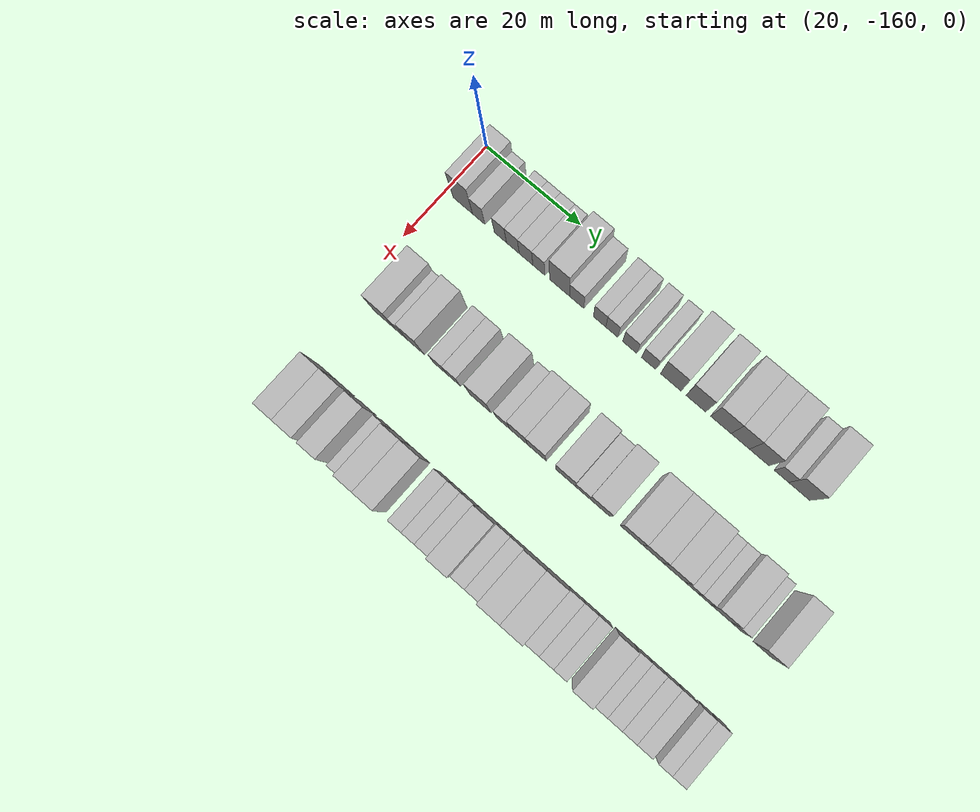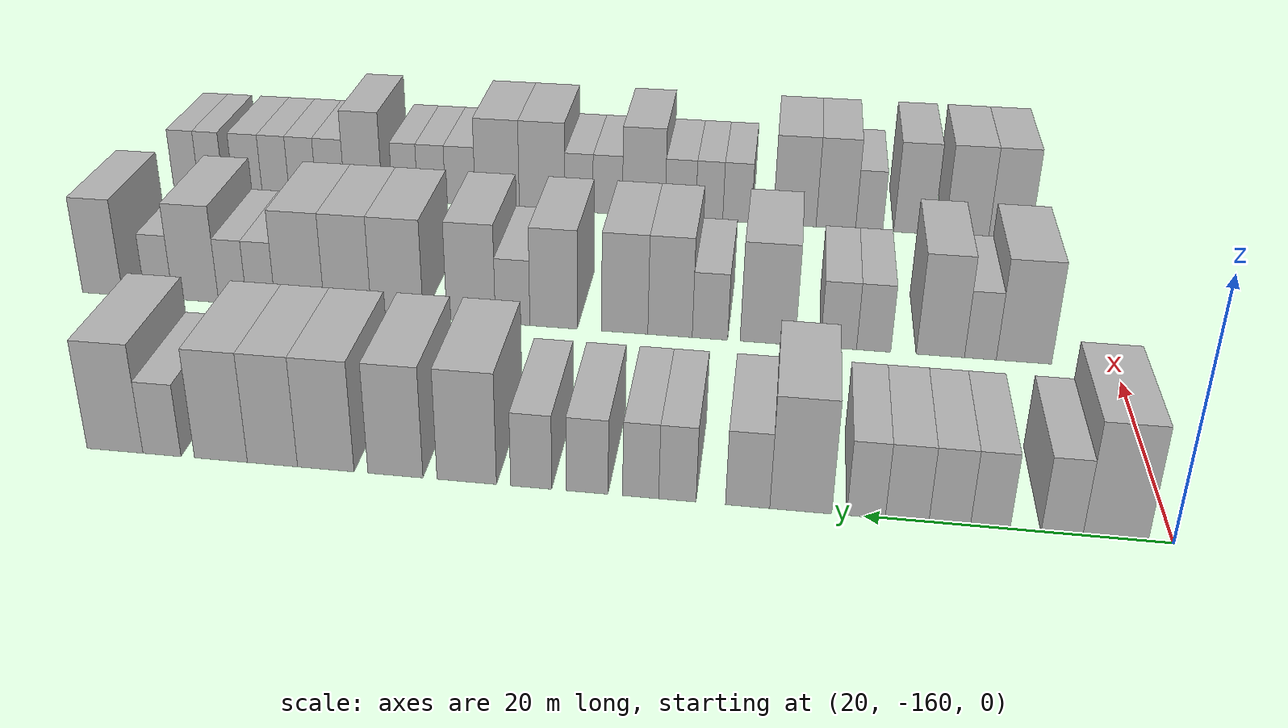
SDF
<sdf version="1.6">
 <world name="default">
  <model name="building_22">
   <static>1</static>
   <pose>25.0000 -156.2801 0 0.000000 0.000000 0.000000</pose>
   <link name="link">
    <pose>0 0 4.50 0 0 0</pose>
    <collision name="collision"><geometry><box><size>10.0000 4.1516 9.0000</size></box></geometry></collision>
    <visual name="visual">
     <cast_shadows>0</cast_shadows>
     <geometry><box><size>10.0000 4.1516 9.0000</size></box></geometry>
     <material>
      <script>
       <uri>model://HANNAS_wall/materials/scripts</uri>
       <uri>model://HANNAS_wall/materials/textures</uri>
       <name>vrc/HANNAS_wall</name>
      </script>
     </material>
    </visual>
   </link>
  </model>
  <model name="building_23">
   <static>1</static>
   <pose>25.0000 -152.8687 0 0.000000 0.000000 0.000000</pose>
   <link name="link">
    <pose>0 0 3.00 0 0 0</pose>
    <collision name="collision"><geometry><box><size>10.0000 2.6712 6.0000</size></box></geometry></collision>
    <visual name="visual">
     <cast_shadows>0</cast_shadows>
     <geometry><box><size>10.0000 2.6712 6.0000</size></box></geometry>
     <material>
      <script>
       <uri>model://HANNAS_wall/materials/scripts</uri>
       <uri>model://HANNAS_wall/materials/textures</uri>
       <name>vrc/HANNAS_wall</name>
      </script>
     </material>
    </visual>
   </link>
  </model>
  <model name="building_24">
   <static>1</static>
   <pose>25.0000 -148.2461 0 0.000000 0.000000 0.000000</pose>
   <link name="link">
    <pose>0 0 3.00 0 0 0</pose>
    <collision name="collision"><geometry><box><size>10.0000 2.5739 6.0000</size></box></geometry></collision>
    <visual name="visual">
     <cast_shadows>0</cast_shadows>
     <geometry><box><size>10.0000 2.5739 6.0000</size></box></geometry>
     <material>
      <script>
       <uri>model://HANNAS_wall/materials/scripts</uri>
       <uri>model://HANNAS_wall/materials/textures</uri>
       <name>vrc/HANNAS_wall</name>
      </script>
     </material>
    </visual>
   </link>
  </model>
  <model name="building_25">
   <static>1</static>
   <pose>25.0000 -145.6053 0 0.000000 0.000000 0.000000</pose>
   <link name="link">
    <pose>0 0 3.00 0 0 0</pose>
    <collision name="collision"><geometry><box><size>10.0000 2.7077 6.0000</size></box></geometry></collision>
    <visual name="visual">
     <cast_shadows>0</cast_shadows>
     <geometry><box><size>10.0000 2.7077 6.0000</size></box></geometry>
     <material>
      <script>
       <uri>model://HANNAS_wall/materials/scripts</uri>
       <uri>model://HANNAS_wall/materials/textures</uri>
       <name>vrc/HANNAS_wall</name>
      </script>
     </material>
    </visual>
   </link>
  </model>
  <model name="building_26">
   <static>1</static>
   <pose>25.0000 -142.8159 0 0.000000 0.000000 0.000000</pose>
   <link name="link">
    <pose>0 0 3.00 0 0 0</pose>
    <collision name="collision"><geometry><box><size>10.0000 2.8712 6.0000</size></box></geometry></collision>
    <visual name="visual">
     <cast_shadows>0</cast_shadows>
     <geometry><box><size>10.0000 2.8712 6.0000</size></box></geometry>
     <material>
      <script>
       <uri>model://HANNAS_wall/materials/scripts</uri>
       <uri>model://HANNAS_wall/materials/textures</uri>
       <name>vrc/HANNAS_wall</name>
      </script>
     </material>
    </visual>
   </link>
  </model>
  <model name="building_27">
   <static>1</static>
   <pose>25.0000 -140.1075 0 0.000000 0.000000 0.000000</pose>
   <link name="link">
    <pose>0 0 3.00 0 0 0</pose>
    <collision name="collision"><geometry><box><size>10.0000 2.5455 6.0000</size></box></geometry></collision>
    <visual name="visual">
     <cast_shadows>0</cast_shadows>
     <geometry><box><size>10.0000 2.5455 6.0000</size></box></geometry>
     <material>
      <script>
       <uri>model://HANNAS_wall/materials/scripts</uri>
       <uri>model://HANNAS_wall/materials/textures</uri>
       <name>vrc/HANNAS_wall</name>
      </script>
     </material>
    </visual>
   </link>
  </model>
  <model name="building_28">
   <static>1</static>
   <pose>25.0000 -135.7602 0 0.000000 0.000000 0.000000</pose>
   <link name="link">
    <pose>0 0 4.50 0 0 0</pose>
    <collision name="collision"><geometry><box><size>10.0000 4.1491 9.0000</size></box></geometry></collision>
    <visual name="visual">
     <cast_shadows>0</cast_shadows>
     <geometry><box><size>10.0000 4.1491 9.0000</size></box></geometry>
     <material>
      <script>
       <uri>model://HANNAS_wall/materials/scripts</uri>
       <uri>model://HANNAS_wall/materials/textures</uri>
       <name>vrc/HANNAS_wall</name>
      </script>
     </material>
    </visual>
   </link>
  </model>
  <model name="building_29">
   <static>1</static>
   <pose>25.0000 -132.1900 0 0.000000 0.000000 0.000000</pose>
   <link name="link">
    <pose>0 0 3.00 0 0 0</pose>
    <collision name="collision"><geometry><box><size>10.0000 2.9913 6.0000</size></box></geometry></collision>
    <visual name="visual">
     <cast_shadows>0</cast_shadows>
     <geometry><box><size>10.0000 2.9913 6.0000</size></box></geometry>
     <material>
      <script>
       <uri>model://HANNAS_wall/materials/scripts</uri>
       <uri>model://HANNAS_wall/materials/textures</uri>
       <name>vrc/HANNAS_wall</name>
      </script>
     </material>
    </visual>
   </link>
  </model>
  <model name="building_30">
   <static>1</static>
   <pose>25.0000 -127.4156 0 0.000000 0.000000 0.000000</pose>
   <link name="link">
    <pose>0 0 3.00 0 0 0</pose>
    <collision name="collision"><geometry><box><size>10.0000 2.5576 6.0000</size></box></geometry></collision>
    <visual name="visual">
     <cast_shadows>0</cast_shadows>
     <geometry><box><size>10.0000 2.5576 6.0000</size></box></geometry>
     <material>
      <script>
       <uri>model://HANNAS_wall/materials/scripts</uri>
       <uri>model://HANNAS_wall/materials/textures</uri>
       <name>vrc/HANNAS_wall</name>
      </script>
     </material>
    </visual>
   </link>
  </model>
  <model name="building_31">
   <static>1</static>
   <pose>25.0000 -124.8931 0 0.000000 0.000000 0.000000</pose>
   <link name="link">
    <pose>0 0 3.00 0 0 0</pose>
    <collision name="collision"><geometry><box><size>10.0000 2.4873 6.0000</size></box></geometry></collision>
    <visual name="visual">
     <cast_shadows>0</cast_shadows>
     <geometry><box><size>10.0000 2.4873 6.0000</size></box></geometry>
     <material>
      <script>
       <uri>model://HANNAS_wall/materials/scripts</uri>
       <uri>model://HANNAS_wall/materials/textures</uri>
       <name>vrc/HANNAS_wall</name>
      </script>
     </material>
    </visual>
   </link>
  </model>
  <model name="building_32">
   <static>1</static>
   <pose>25.0000 -121.1927 0 0.000000 0.000000 0.000000</pose>
   <link name="link">
    <pose>0 0 3.00 0 0 0</pose>
    <collision name="collision"><geometry><box><size>10.0000 2.9135 6.0000</size></box></geometry></collision>
    <visual name="visual">
     <cast_shadows>0</cast_shadows>
     <geometry><box><size>10.0000 2.9135 6.0000</size></box></geometry>
     <material>
      <script>
       <uri>model://HANNAS_wall/materials/scripts</uri>
       <uri>model://HANNAS_wall/materials/textures</uri>
       <name>vrc/HANNAS_wall</name>
      </script>
     </material>
    </visual>
   </link>
  </model>
  <model name="building_33">
   <static>1</static>
   <pose>25.0000 -117.2960 0 0.000000 0.000000 0.000000</pose>
   <link name="link">
    <pose>0 0 3.00 0 0 0</pose>
    <collision name="collision"><geometry><box><size>10.0000 2.8801 6.0000</size></box></geometry></collision>
    <visual name="visual">
     <cast_shadows>0</cast_shadows>
     <geometry><box><size>10.0000 2.8801 6.0000</size></box></geometry>
     <material>
      <script>
       <uri>model://HANNAS_wall/materials/scripts</uri>
       <uri>model://HANNAS_wall/materials/textures</uri>
       <name>vrc/HANNAS_wall</name>
      </script>
     </material>
    </visual>
   </link>
  </model>
  <model name="building_34">
   <static>1</static>
   <pose>25.0000 -112.7442 0 0.000000 0.000000 0.000000</pose>
   <link name="link">
    <pose>0 0 4.50 0 0 0</pose>
    <collision name="collision"><geometry><box><size>10.0000 4.2234 9.0000</size></box></geometry></collision>
    <visual name="visual">
     <cast_shadows>0</cast_shadows>
     <geometry><box><size>10.0000 4.2234 9.0000</size></box></geometry>
     <material>
      <script>
       <uri>model://HANNAS_wall/materials/scripts</uri>
       <uri>model://HANNAS_wall/materials/textures</uri>
       <name>vrc/HANNAS_wall</name>
      </script>
     </material>
    </visual>
   </link>
  </model>
  <model name="building_35">
   <static>1</static>
   <pose>25.0000 -107.6550 0 0.000000 0.000000 0.000000</pose>
   <link name="link">
    <pose>0 0 4.50 0 0 0</pose>
    <collision name="collision"><geometry><box><size>10.0000 3.9551 9.0000</size></box></geometry></collision>
    <visual name="visual">
     <cast_shadows>0</cast_shadows>
     <geometry><box><size>10.0000 3.9551 9.0000</size></box></geometry>
     <material>
      <script>
       <uri>model://HANNAS_wall/materials/scripts</uri>
       <uri>model://HANNAS_wall/materials/textures</uri>
       <name>vrc/HANNAS_wall</name>
      </script>
     </material>
    </visual>
   </link>
  </model>
  <model name="building_36">
   <static>1</static>
   <pose>25.0000 -102.6188 0 0.000000 0.000000 0.000000</pose>
   <link name="link">
    <pose>0 0 4.50 0 0 0</pose>
    <collision name="collision"><geometry><box><size>10.0000 4.1171 9.0000</size></box></geometry></collision>
    <visual name="visual">
     <cast_shadows>0</cast_shadows>
     <geometry><box><size>10.0000 4.1171 9.0000</size></box></geometry>
     <material>
      <script>
       <uri>model://HANNAS_wall/materials/scripts</uri>
       <uri>model://HANNAS_wall/materials/textures</uri>
       <name>vrc/HANNAS_wall</name>
      </script>
     </material>
    </visual>
   </link>
  </model>
  <model name="building_37">
   <static>1</static>
   <pose>25.0000 -98.7175 0 0.000000 0.000000 0.000000</pose>
   <link name="link">
    <pose>0 0 4.50 0 0 0</pose>
    <collision name="collision"><geometry><box><size>10.0000 3.6855 9.0000</size></box></geometry></collision>
    <visual name="visual">
     <cast_shadows>0</cast_shadows>
     <geometry><box><size>10.0000 3.6855 9.0000</size></box></geometry>
     <material>
      <script>
       <uri>model://HANNAS_wall/materials/scripts</uri>
       <uri>model://HANNAS_wall/materials/textures</uri>
       <name>vrc/HANNAS_wall</name>
      </script>
     </material>
    </visual>
   </link>
  </model>
  <model name="building_38">
   <static>1</static>
   <pose>25.0000 -94.9132 0 0.000000 0.000000 0.000000</pose>
   <link name="link">
    <pose>0 0 4.50 0 0 0</pose>
    <collision name="collision"><geometry><box><size>10.0000 3.9232 9.0000</size></box></geometry></collision>
    <visual name="visual">
     <cast_shadows>0</cast_shadows>
     <geometry><box><size>10.0000 3.9232 9.0000</size></box></geometry>
     <material>
      <script>
       <uri>model://HANNAS_wall/materials/scripts</uri>
       <uri>model://HANNAS_wall/materials/textures</uri>
       <name>vrc/HANNAS_wall</name>
      </script>
     </material>
    </visual>
   </link>
  </model>
  <model name="building_39">
   <static>1</static>
   <pose>25.0000 -90.5233 0 0.000000 0.000000 0.000000</pose>
   <link name="link">
    <pose>0 0 3.00 0 0 0</pose>
    <collision name="collision"><geometry><box><size>10.0000 2.8564 6.0000</size></box></geometry></collision>
    <visual name="visual">
     <cast_shadows>0</cast_shadows>
     <geometry><box><size>10.0000 2.8564 6.0000</size></box></geometry>
     <material>
      <script>
       <uri>model://HANNAS_wall/materials/scripts</uri>
       <uri>model://HANNAS_wall/materials/textures</uri>
       <name>vrc/HANNAS_wall</name>
      </script>
     </material>
    </visual>
   </link>
  </model>
  <model name="building_40">
   <static>1</static>
   <pose>25.0000 -86.9882 0 0.000000 0.000000 0.000000</pose>
   <link name="link">
    <pose>0 0 4.50 0 0 0</pose>
    <collision name="collision"><geometry><box><size>10.0000 4.2139 9.0000</size></box></geometry></collision>
    <visual name="visual">
     <cast_shadows>0</cast_shadows>
     <geometry><box><size>10.0000 4.2139 9.0000</size></box></geometry>
     <material>
      <script>
       <uri>model://HANNAS_wall/materials/scripts</uri>
       <uri>model://HANNAS_wall/materials/textures</uri>
       <name>vrc/HANNAS_wall</name>
      </script>
     </material>
    </visual>
   </link>
  </model>
  <model name="building_142">
   <static>1</static>
   <pose>47.0000 -152.9065 0 0.000000 0.000000 0.000000</pose>
   <link name="link">
    <pose>0 0 4.50 0 0 0</pose>
    <collision name="collision"><geometry><box><size>10.0000 4.2581 9.0000</size></box></geometry></collision>
    <visual name="visual">
     <cast_shadows>0</cast_shadows>
     <geometry><box><size>10.0000 4.2581 9.0000</size></box></geometry>
     <material>
      <script>
       <uri>model://HANNAS_wall/materials/scripts</uri>
       <uri>model://HANNAS_wall/materials/textures</uri>
       <name>vrc/HANNAS_wall</name>
      </script>
     </material>
    </visual>
   </link>
  </model>
  <model name="building_143">
   <static>1</static>
   <pose>47.0000 -149.5457 0 0.000000 0.000000 0.000000</pose>
   <link name="link">
    <pose>0 0 3.00 0 0 0</pose>
    <collision name="collision"><geometry><box><size>10.0000 2.4635 6.0000</size></box></geometry></collision>
    <visual name="visual">
     <cast_shadows>0</cast_shadows>
     <geometry><box><size>10.0000 2.4635 6.0000</size></box></geometry>
     <material>
      <script>
       <uri>model://HANNAS_wall/materials/scripts</uri>
       <uri>model://HANNAS_wall/materials/textures</uri>
       <name>vrc/HANNAS_wall</name>
      </script>
     </material>
    </visual>
   </link>
  </model>
  <model name="building_144">
   <static>1</static>
   <pose>47.0000 -146.4337 0 0.000000 0.000000 0.000000</pose>
   <link name="link">
    <pose>0 0 4.50 0 0 0</pose>
    <collision name="collision"><geometry><box><size>10.0000 3.7605 9.0000</size></box></geometry></collision>
    <visual name="visual">
     <cast_shadows>0</cast_shadows>
     <geometry><box><size>10.0000 3.7605 9.0000</size></box></geometry>
     <material>
      <script>
       <uri>model://HANNAS_wall/materials/scripts</uri>
       <uri>model://HANNAS_wall/materials/textures</uri>
       <name>vrc/HANNAS_wall</name>
      </script>
     </material>
    </visual>
   </link>
  </model>
  <model name="building_145">
   <static>1</static>
   <pose>47.0000 -141.2028 0 0.000000 0.000000 0.000000</pose>
   <link name="link">
    <pose>0 0 3.00 0 0 0</pose>
    <collision name="collision"><geometry><box><size>10.0000 2.7014 6.0000</size></box></geometry></collision>
    <visual name="visual">
     <cast_shadows>0</cast_shadows>
     <geometry><box><size>10.0000 2.7014 6.0000</size></box></geometry>
     <material>
      <script>
       <uri>model://HANNAS_wall/materials/scripts</uri>
       <uri>model://HANNAS_wall/materials/textures</uri>
       <name>vrc/HANNAS_wall</name>
      </script>
     </material>
    </visual>
   </link>
  </model>
  <model name="building_146">
   <static>1</static>
   <pose>47.0000 -138.4193 0 0.000000 0.000000 0.000000</pose>
   <link name="link">
    <pose>0 0 3.00 0 0 0</pose>
    <collision name="collision"><geometry><box><size>10.0000 2.8654 6.0000</size></box></geometry></collision>
    <visual name="visual">
     <cast_shadows>0</cast_shadows>
     <geometry><box><size>10.0000 2.8654 6.0000</size></box></geometry>
     <material>
      <script>
       <uri>model://HANNAS_wall/materials/scripts</uri>
       <uri>model://HANNAS_wall/materials/textures</uri>
       <name>vrc/HANNAS_wall</name>
      </script>
     </material>
    </visual>
   </link>
  </model>
  <model name="building_147">
   <static>1</static>
   <pose>47.0000 -132.7723 0 0.000000 0.000000 0.000000</pose>
   <link name="link">
    <pose>0 0 4.50 0 0 0</pose>
    <collision name="collision"><geometry><box><size>10.0000 4.4286 9.0000</size></box></geometry></collision>
    <visual name="visual">
     <cast_shadows>0</cast_shadows>
     <geometry><box><size>10.0000 4.4286 9.0000</size></box></geometry>
     <material>
      <script>
       <uri>model://HANNAS_wall/materials/scripts</uri>
       <uri>model://HANNAS_wall/materials/textures</uri>
       <name>vrc/HANNAS_wall</name>
      </script>
     </material>
    </visual>
   </link>
  </model>
  <model name="building_148">
   <static>1</static>
   <pose>47.0000 -128.1174 0 0.000000 0.000000 0.000000</pose>
   <link name="link">
    <pose>0 0 3.00 0 0 0</pose>
    <collision name="collision"><geometry><box><size>10.0000 2.8811 6.0000</size></box></geometry></collision>
    <visual name="visual">
     <cast_shadows>0</cast_shadows>
     <geometry><box><size>10.0000 2.8811 6.0000</size></box></geometry>
     <material>
      <script>
       <uri>model://HANNAS_wall/materials/scripts</uri>
       <uri>model://HANNAS_wall/materials/textures</uri>
       <name>vrc/HANNAS_wall</name>
      </script>
     </material>
    </visual>
   </link>
  </model>
  <model name="building_149">
   <static>1</static>
   <pose>47.0000 -124.8654 0 0.000000 0.000000 0.000000</pose>
   <link name="link">
    <pose>0 0 4.50 0 0 0</pose>
    <collision name="collision"><geometry><box><size>10.0000 3.6229 9.0000</size></box></geometry></collision>
    <visual name="visual">
     <cast_shadows>0</cast_shadows>
     <geometry><box><size>10.0000 3.6229 9.0000</size></box></geometry>
     <material>
      <script>
       <uri>model://HANNAS_wall/materials/scripts</uri>
       <uri>model://HANNAS_wall/materials/textures</uri>
       <name>vrc/HANNAS_wall</name>
      </script>
     </material>
    </visual>
   </link>
  </model>
  <model name="building_150">
   <static>1</static>
   <pose>47.0000 -121.1486 0 0.000000 0.000000 0.000000</pose>
   <link name="link">
    <pose>0 0 4.50 0 0 0</pose>
    <collision name="collision"><geometry><box><size>10.0000 3.8107 9.0000</size></box></geometry></collision>
    <visual name="visual">
     <cast_shadows>0</cast_shadows>
     <geometry><box><size>10.0000 3.8107 9.0000</size></box></geometry>
     <material>
      <script>
       <uri>model://HANNAS_wall/materials/scripts</uri>
       <uri>model://HANNAS_wall/materials/textures</uri>
       <name>vrc/HANNAS_wall</name>
      </script>
     </material>
    </visual>
   </link>
  </model>
  <model name="building_151">
   <static>1</static>
   <pose>47.0000 -115.2673 0 0.000000 0.000000 0.000000</pose>
   <link name="link">
    <pose>0 0 4.50 0 0 0</pose>
    <collision name="collision"><geometry><box><size>10.0000 3.9520 9.0000</size></box></geometry></collision>
    <visual name="visual">
     <cast_shadows>0</cast_shadows>
     <geometry><box><size>10.0000 3.9520 9.0000</size></box></geometry>
     <material>
      <script>
       <uri>model://HANNAS_wall/materials/scripts</uri>
       <uri>model://HANNAS_wall/materials/textures</uri>
       <name>vrc/HANNAS_wall</name>
      </script>
     </material>
    </visual>
   </link>
  </model>
  <model name="building_152">
   <static>1</static>
   <pose>47.0000 -111.8466 0 0.000000 0.000000 0.000000</pose>
   <link name="link">
    <pose>0 0 3.00 0 0 0</pose>
    <collision name="collision"><geometry><box><size>10.0000 2.8892 6.0000</size></box></geometry></collision>
    <visual name="visual">
     <cast_shadows>0</cast_shadows>
     <geometry><box><size>10.0000 2.8892 6.0000</size></box></geometry>
     <material>
      <script>
       <uri>model://HANNAS_wall/materials/scripts</uri>
       <uri>model://HANNAS_wall/materials/textures</uri>
       <name>vrc/HANNAS_wall</name>
      </script>
     </material>
    </visual>
   </link>
  </model>
  <model name="building_153">
   <static>1</static>
   <pose>47.0000 -108.3455 0 0.000000 0.000000 0.000000</pose>
   <link name="link">
    <pose>0 0 4.50 0 0 0</pose>
    <collision name="collision"><geometry><box><size>10.0000 4.1132 9.0000</size></box></geometry></collision>
    <visual name="visual">
     <cast_shadows>0</cast_shadows>
     <geometry><box><size>10.0000 4.1132 9.0000</size></box></geometry>
     <material>
      <script>
       <uri>model://HANNAS_wall/materials/scripts</uri>
       <uri>model://HANNAS_wall/materials/textures</uri>
       <name>vrc/HANNAS_wall</name>
      </script>
     </material>
    </visual>
   </link>
  </model>
  <model name="building_154">
   <static>1</static>
   <pose>47.0000 -102.0620 0 0.000000 0.000000 0.000000</pose>
   <link name="link">
    <pose>0 0 4.50 0 0 0</pose>
    <collision name="collision"><geometry><box><size>10.0000 4.4537 9.0000</size></box></geometry></collision>
    <visual name="visual">
     <cast_shadows>0</cast_shadows>
     <geometry><box><size>10.0000 4.4537 9.0000</size></box></geometry>
     <material>
      <script>
       <uri>model://HANNAS_wall/materials/scripts</uri>
       <uri>model://HANNAS_wall/materials/textures</uri>
       <name>vrc/HANNAS_wall</name>
      </script>
     </material>
    </visual>
   </link>
  </model>
  <model name="building_155">
   <static>1</static>
   <pose>47.0000 -97.8123 0 0.000000 0.000000 0.000000</pose>
   <link name="link">
    <pose>0 0 4.50 0 0 0</pose>
    <collision name="collision"><geometry><box><size>10.0000 4.0456 9.0000</size></box></geometry></collision>
    <visual name="visual">
     <cast_shadows>0</cast_shadows>
     <geometry><box><size>10.0000 4.0456 9.0000</size></box></geometry>
     <material>
      <script>
       <uri>model://HANNAS_wall/materials/scripts</uri>
       <uri>model://HANNAS_wall/materials/textures</uri>
       <name>vrc/HANNAS_wall</name>
      </script>
     </material>
    </visual>
   </link>
  </model>
  <model name="building_156">
   <static>1</static>
   <pose>47.0000 -93.6516 0 0.000000 0.000000 0.000000</pose>
   <link name="link">
    <pose>0 0 4.50 0 0 0</pose>
    <collision name="collision"><geometry><box><size>10.0000 4.2757 9.0000</size></box></geometry></collision>
    <visual name="visual">
     <cast_shadows>0</cast_shadows>
     <geometry><box><size>10.0000 4.2757 9.0000</size></box></geometry>
     <material>
      <script>
       <uri>model://HANNAS_wall/materials/scripts</uri>
       <uri>model://HANNAS_wall/materials/textures</uri>
       <name>vrc/HANNAS_wall</name>
      </script>
     </material>
    </visual>
   </link>
  </model>
  <model name="building_157">
   <static>1</static>
   <pose>47.0000 -90.2600 0 0.000000 0.000000 0.000000</pose>
   <link name="link">
    <pose>0 0 3.00 0 0 0</pose>
    <collision name="collision"><geometry><box><size>10.0000 2.5075 6.0000</size></box></geometry></collision>
    <visual name="visual">
     <cast_shadows>0</cast_shadows>
     <geometry><box><size>10.0000 2.5075 6.0000</size></box></geometry>
     <material>
      <script>
       <uri>model://HANNAS_wall/materials/scripts</uri>
       <uri>model://HANNAS_wall/materials/textures</uri>
       <name>vrc/HANNAS_wall</name>
      </script>
     </material>
    </visual>
   </link>
  </model>
  <model name="building_158">
   <static>1</static>
   <pose>47.0000 -87.7638 0 0.000000 0.000000 0.000000</pose>
   <link name="link">
    <pose>0 0 3.00 0 0 0</pose>
    <collision name="collision"><geometry><box><size>10.0000 2.4848 6.0000</size></box></geometry></collision>
    <visual name="visual">
     <cast_shadows>0</cast_shadows>
     <geometry><box><size>10.0000 2.4848 6.0000</size></box></geometry>
     <material>
      <script>
       <uri>model://HANNAS_wall/materials/scripts</uri>
       <uri>model://HANNAS_wall/materials/textures</uri>
       <name>vrc/HANNAS_wall</name>
      </script>
     </material>
    </visual>
   </link>
  </model>
  <model name="building_159">
   <static>1</static>
   <pose>47.0000 -84.4908 0 0.000000 0.000000 0.000000</pose>
   <link name="link">
    <pose>0 0 4.50 0 0 0</pose>
    <collision name="collision"><geometry><box><size>10.0000 4.0612 9.0000</size></box></geometry></collision>
    <visual name="visual">
     <cast_shadows>0</cast_shadows>
     <geometry><box><size>10.0000 4.0612 9.0000</size></box></geometry>
     <material>
      <script>
       <uri>model://HANNAS_wall/materials/scripts</uri>
       <uri>model://HANNAS_wall/materials/textures</uri>
       <name>vrc/HANNAS_wall</name>
      </script>
     </material>
    </visual>
   </link>
  </model>
  <model name="building_160">
   <static>1</static>
   <pose>47.0000 -81.2140 0 0.000000 0.000000 0.000000</pose>
   <link name="link">
    <pose>0 0 3.00 0 0 0</pose>
    <collision name="collision"><geometry><box><size>10.0000 2.4925 6.0000</size></box></geometry></collision>
    <visual name="visual">
     <cast_shadows>0</cast_shadows>
     <geometry><box><size>10.0000 2.4925 6.0000</size></box></geometry>
     <material>
      <script>
       <uri>model://HANNAS_wall/materials/scripts</uri>
       <uri>model://HANNAS_wall/materials/textures</uri>
       <name>vrc/HANNAS_wall</name>
      </script>
     </material>
    </visual>
   </link>
  </model>
  <model name="building_161">
   <static>1</static>
   <pose>47.0000 -76.1546 0 0.000000 0.000000 0.000000</pose>
   <link name="link">
    <pose>0 0 4.50 0 0 0</pose>
    <collision name="collision"><geometry><box><size>10.0000 3.6261 9.0000</size></box></geometry></collision>
    <visual name="visual">
     <cast_shadows>0</cast_shadows>
     <geometry><box><size>10.0000 3.6261 9.0000</size></box></geometry>
     <material>
      <script>
       <uri>model://HANNAS_wall/materials/scripts</uri>
       <uri>model://HANNAS_wall/materials/textures</uri>
       <name>vrc/HANNAS_wall</name>
      </script>
     </material>
    </visual>
   </link>
  </model>
  <model name="building_270">
   <static>1</static>
   <pose>69.0000 -154.0956 0 0.000000 0.000000 0.000000</pose>
   <link name="link">
    <pose>0 0 4.50 0 0 0</pose>
    <collision name="collision"><geometry><box><size>10.0000 3.7353 9.0000</size></box></geometry></collision>
    <visual name="visual">
     <cast_shadows>0</cast_shadows>
     <geometry><box><size>10.0000 3.7353 9.0000</size></box></geometry>
     <material>
      <script>
       <uri>model://HANNAS_wall/materials/scripts</uri>
       <uri>model://HANNAS_wall/materials/textures</uri>
       <name>vrc/HANNAS_wall</name>
      </script>
     </material>
    </visual>
   </link>
  </model>
  <model name="building_271">
   <static>1</static>
   <pose>69.0000 -150.2563 0 0.000000 0.000000 0.000000</pose>
   <link name="link">
    <pose>0 0 4.50 0 0 0</pose>
    <collision name="collision"><geometry><box><size>10.0000 3.9434 9.0000</size></box></geometry></collision>
    <visual name="visual">
     <cast_shadows>0</cast_shadows>
     <geometry><box><size>10.0000 3.9434 9.0000</size></box></geometry>
     <material>
      <script>
       <uri>model://HANNAS_wall/materials/scripts</uri>
       <uri>model://HANNAS_wall/materials/textures</uri>
       <name>vrc/HANNAS_wall</name>
      </script>
     </material>
    </visual>
   </link>
  </model>
  <model name="building_272">
   <static>1</static>
   <pose>69.0000 -145.4606 0 0.000000 0.000000 0.000000</pose>
   <link name="link">
    <pose>0 0 4.50 0 0 0</pose>
    <collision name="collision"><geometry><box><size>10.0000 3.6479 9.0000</size></box></geometry></collision>
    <visual name="visual">
     <cast_shadows>0</cast_shadows>
     <geometry><box><size>10.0000 3.6479 9.0000</size></box></geometry>
     <material>
      <script>
       <uri>model://HANNAS_wall/materials/scripts</uri>
       <uri>model://HANNAS_wall/materials/textures</uri>
       <name>vrc/HANNAS_wall</name>
      </script>
     </material>
    </visual>
   </link>
  </model>
  <model name="building_273">
   <static>1</static>
   <pose>69.0000 -141.3880 0 0.000000 0.000000 0.000000</pose>
   <link name="link">
    <pose>0 0 3.00 0 0 0</pose>
    <collision name="collision"><geometry><box><size>10.0000 2.4972 6.0000</size></box></geometry></collision>
    <visual name="visual">
     <cast_shadows>0</cast_shadows>
     <geometry><box><size>10.0000 2.4972 6.0000</size></box></geometry>
     <material>
      <script>
       <uri>model://HANNAS_wall/materials/scripts</uri>
       <uri>model://HANNAS_wall/materials/textures</uri>
       <name>vrc/HANNAS_wall</name>
      </script>
     </material>
    </visual>
   </link>
  </model>
  <model name="building_274">
   <static>1</static>
   <pose>69.0000 -138.3183 0 0.000000 0.000000 0.000000</pose>
   <link name="link">
    <pose>0 0 4.50 0 0 0</pose>
    <collision name="collision"><geometry><box><size>10.0000 3.6423 9.0000</size></box></geometry></collision>
    <visual name="visual">
     <cast_shadows>0</cast_shadows>
     <geometry><box><size>10.0000 3.6423 9.0000</size></box></geometry>
     <material>
      <script>
       <uri>model://HANNAS_wall/materials/scripts</uri>
       <uri>model://HANNAS_wall/materials/textures</uri>
       <name>vrc/HANNAS_wall</name>
      </script>
     </material>
    </visual>
   </link>
  </model>
  <model name="building_275">
   <static>1</static>
   <pose>69.0000 -134.4966 0 0.000000 0.000000 0.000000</pose>
   <link name="link">
    <pose>0 0 4.50 0 0 0</pose>
    <collision name="collision"><geometry><box><size>10.0000 4.0012 9.0000</size></box></geometry></collision>
    <visual name="visual">
     <cast_shadows>0</cast_shadows>
     <geometry><box><size>10.0000 4.0012 9.0000</size></box></geometry>
     <material>
      <script>
       <uri>model://HANNAS_wall/materials/scripts</uri>
       <uri>model://HANNAS_wall/materials/textures</uri>
       <name>vrc/HANNAS_wall</name>
      </script>
     </material>
    </visual>
   </link>
  </model>
  <model name="building_276">
   <static>1</static>
   <pose>69.0000 -129.1468 0 0.000000 0.000000 0.000000</pose>
   <link name="link">
    <pose>0 0 3.00 0 0 0</pose>
    <collision name="collision"><geometry><box><size>10.0000 2.6983 6.0000</size></box></geometry></collision>
    <visual name="visual">
     <cast_shadows>0</cast_shadows>
     <geometry><box><size>10.0000 2.6983 6.0000</size></box></geometry>
     <material>
      <script>
       <uri>model://HANNAS_wall/materials/scripts</uri>
       <uri>model://HANNAS_wall/materials/textures</uri>
       <name>vrc/HANNAS_wall</name>
      </script>
     </material>
    </visual>
   </link>
  </model>
  <model name="building_277">
   <static>1</static>
   <pose>69.0000 -126.5209 0 0.000000 0.000000 0.000000</pose>
   <link name="link">
    <pose>0 0 3.00 0 0 0</pose>
    <collision name="collision"><geometry><box><size>10.0000 2.5535 6.0000</size></box></geometry></collision>
    <visual name="visual">
     <cast_shadows>0</cast_shadows>
     <geometry><box><size>10.0000 2.5535 6.0000</size></box></geometry>
     <material>
      <script>
       <uri>model://HANNAS_wall/materials/scripts</uri>
       <uri>model://HANNAS_wall/materials/textures</uri>
       <name>vrc/HANNAS_wall</name>
      </script>
     </material>
    </visual>
   </link>
  </model>
  <model name="building_278">
   <static>1</static>
   <pose>69.0000 -123.7930 0 0.000000 0.000000 0.000000</pose>
   <link name="link">
    <pose>0 0 3.00 0 0 0</pose>
    <collision name="collision"><geometry><box><size>10.0000 2.9022 6.0000</size></box></geometry></collision>
    <visual name="visual">
     <cast_shadows>0</cast_shadows>
     <geometry><box><size>10.0000 2.9022 6.0000</size></box></geometry>
     <material>
      <script>
       <uri>model://HANNAS_wall/materials/scripts</uri>
       <uri>model://HANNAS_wall/materials/textures</uri>
       <name>vrc/HANNAS_wall</name>
      </script>
     </material>
    </visual>
   </link>
  </model>
  <model name="building_279">
   <static>1</static>
   <pose>69.0000 -120.3125 0 0.000000 0.000000 0.000000</pose>
   <link name="link">
    <pose>0 0 4.50 0 0 0</pose>
    <collision name="collision"><geometry><box><size>10.0000 4.0588 9.0000</size></box></geometry></collision>
    <visual name="visual">
     <cast_shadows>0</cast_shadows>
     <geometry><box><size>10.0000 4.0588 9.0000</size></box></geometry>
     <material>
      <script>
       <uri>model://HANNAS_wall/materials/scripts</uri>
       <uri>model://HANNAS_wall/materials/textures</uri>
       <name>vrc/HANNAS_wall</name>
      </script>
     </material>
    </visual>
   </link>
  </model>
  <model name="building_280">
   <static>1</static>
   <pose>69.0000 -116.8750 0 0.000000 0.000000 0.000000</pose>
   <link name="link">
    <pose>0 0 3.00 0 0 0</pose>
    <collision name="collision"><geometry><box><size>10.0000 2.8163 6.0000</size></box></geometry></collision>
    <visual name="visual">
     <cast_shadows>0</cast_shadows>
     <geometry><box><size>10.0000 2.8163 6.0000</size></box></geometry>
     <material>
      <script>
       <uri>model://HANNAS_wall/materials/scripts</uri>
       <uri>model://HANNAS_wall/materials/textures</uri>
       <name>vrc/HANNAS_wall</name>
      </script>
     </material>
    </visual>
   </link>
  </model>
  <model name="building_281">
   <static>1</static>
   <pose>69.0000 -114.1159 0 0.000000 0.000000 0.000000</pose>
   <link name="link">
    <pose>0 0 3.00 0 0 0</pose>
    <collision name="collision"><geometry><box><size>10.0000 2.7019 6.0000</size></box></geometry></collision>
    <visual name="visual">
     <cast_shadows>0</cast_shadows>
     <geometry><box><size>10.0000 2.7019 6.0000</size></box></geometry>
     <material>
      <script>
       <uri>model://HANNAS_wall/materials/scripts</uri>
       <uri>model://HANNAS_wall/materials/textures</uri>
       <name>vrc/HANNAS_wall</name>
      </script>
     </material>
    </visual>
   </link>
  </model>
  <model name="building_282">
   <static>1</static>
   <pose>69.0000 -110.5596 0 0.000000 0.000000 0.000000</pose>
   <link name="link">
    <pose>0 0 4.50 0 0 0</pose>
    <collision name="collision"><geometry><box><size>10.0000 4.4107 9.0000</size></box></geometry></collision>
    <visual name="visual">
     <cast_shadows>0</cast_shadows>
     <geometry><box><size>10.0000 4.4107 9.0000</size></box></geometry>
     <material>
      <script>
       <uri>model://HANNAS_wall/materials/scripts</uri>
       <uri>model://HANNAS_wall/materials/textures</uri>
       <name>vrc/HANNAS_wall</name>
      </script>
     </material>
    </visual>
   </link>
  </model>
  <model name="building_283">
   <static>1</static>
   <pose>69.0000 -106.2031 0 0.000000 0.000000 0.000000</pose>
   <link name="link">
    <pose>0 0 4.50 0 0 0</pose>
    <collision name="collision"><geometry><box><size>10.0000 4.3024 9.0000</size></box></geometry></collision>
    <visual name="visual">
     <cast_shadows>0</cast_shadows>
     <geometry><box><size>10.0000 4.3024 9.0000</size></box></geometry>
     <material>
      <script>
       <uri>model://HANNAS_wall/materials/scripts</uri>
       <uri>model://HANNAS_wall/materials/textures</uri>
       <name>vrc/HANNAS_wall</name>
      </script>
     </material>
    </visual>
   </link>
  </model>
  <model name="building_284">
   <static>1</static>
   <pose>69.0000 -102.5879 0 0.000000 0.000000 0.000000</pose>
   <link name="link">
    <pose>0 0 3.00 0 0 0</pose>
    <collision name="collision"><geometry><box><size>10.0000 2.9280 6.0000</size></box></geometry></collision>
    <visual name="visual">
     <cast_shadows>0</cast_shadows>
     <geometry><box><size>10.0000 2.9280 6.0000</size></box></geometry>
     <material>
      <script>
       <uri>model://HANNAS_wall/materials/scripts</uri>
       <uri>model://HANNAS_wall/materials/textures</uri>
       <name>vrc/HANNAS_wall</name>
      </script>
     </material>
    </visual>
   </link>
  </model>
  <model name="building_285">
   <static>1</static>
   <pose>69.0000 -99.7501 0 0.000000 0.000000 0.000000</pose>
   <link name="link">
    <pose>0 0 3.00 0 0 0</pose>
    <collision name="collision"><geometry><box><size>10.0000 2.7476 6.0000</size></box></geometry></collision>
    <visual name="visual">
     <cast_shadows>0</cast_shadows>
     <geometry><box><size>10.0000 2.7476 6.0000</size></box></geometry>
     <material>
      <script>
       <uri>model://HANNAS_wall/materials/scripts</uri>
       <uri>model://HANNAS_wall/materials/textures</uri>
       <name>vrc/HANNAS_wall</name>
      </script>
     </material>
    </visual>
   </link>
  </model>
  <model name="building_286">
   <static>1</static>
   <pose>69.0000 -97.1219 0 0.000000 0.000000 0.000000</pose>
   <link name="link">
    <pose>0 0 3.00 0 0 0</pose>
    <collision name="collision"><geometry><box><size>10.0000 2.5088 6.0000</size></box></geometry></collision>
    <visual name="visual">
     <cast_shadows>0</cast_shadows>
     <geometry><box><size>10.0000 2.5088 6.0000</size></box></geometry>
     <material>
      <script>
       <uri>model://HANNAS_wall/materials/scripts</uri>
       <uri>model://HANNAS_wall/materials/textures</uri>
       <name>vrc/HANNAS_wall</name>
      </script>
     </material>
    </visual>
   </link>
  </model>
  <model name="building_287">
   <static>1</static>
   <pose>69.0000 -92.9851 0 0.000000 0.000000 0.000000</pose>
   <link name="link">
    <pose>0 0 4.50 0 0 0</pose>
    <collision name="collision"><geometry><box><size>10.0000 3.7648 9.0000</size></box></geometry></collision>
    <visual name="visual">
     <cast_shadows>0</cast_shadows>
     <geometry><box><size>10.0000 3.7648 9.0000</size></box></geometry>
     <material>
      <script>
       <uri>model://HANNAS_wall/materials/scripts</uri>
       <uri>model://HANNAS_wall/materials/textures</uri>
       <name>vrc/HANNAS_wall</name>
      </script>
     </material>
    </visual>
   </link>
  </model>
  <model name="building_288">
   <static>1</static>
   <pose>69.0000 -89.6716 0 0.000000 0.000000 0.000000</pose>
   <link name="link">
    <pose>0 0 3.00 0 0 0</pose>
    <collision name="collision"><geometry><box><size>10.0000 2.8620 6.0000</size></box></geometry></collision>
    <visual name="visual">
     <cast_shadows>0</cast_shadows>
     <geometry><box><size>10.0000 2.8620 6.0000</size></box></geometry>
     <material>
      <script>
       <uri>model://HANNAS_wall/materials/scripts</uri>
       <uri>model://HANNAS_wall/materials/textures</uri>
       <name>vrc/HANNAS_wall</name>
      </script>
     </material>
    </visual>
   </link>
  </model>
  <model name="building_289">
   <static>1</static>
   <pose>69.0000 -86.8585 0 0.000000 0.000000 0.000000</pose>
   <link name="link">
    <pose>0 0 3.00 0 0 0</pose>
    <collision name="collision"><geometry><box><size>10.0000 2.7644 6.0000</size></box></geometry></collision>
    <visual name="visual">
     <cast_shadows>0</cast_shadows>
     <geometry><box><size>10.0000 2.7644 6.0000</size></box></geometry>
     <material>
      <script>
       <uri>model://HANNAS_wall/materials/scripts</uri>
       <uri>model://HANNAS_wall/materials/textures</uri>
       <name>vrc/HANNAS_wall</name>
      </script>
     </material>
    </visual>
   </link>
  </model>
  <model name="building_290">
   <static>1</static>
   <pose>69.0000 -84.1015 0 0.000000 0.000000 0.000000</pose>
   <link name="link">
    <pose>0 0 3.00 0 0 0</pose>
    <collision name="collision"><geometry><box><size>10.0000 2.7495 6.0000</size></box></geometry></collision>
    <visual name="visual">
     <cast_shadows>0</cast_shadows>
     <geometry><box><size>10.0000 2.7495 6.0000</size></box></geometry>
     <material>
      <script>
       <uri>model://HANNAS_wall/materials/scripts</uri>
       <uri>model://HANNAS_wall/materials/textures</uri>
       <name>vrc/HANNAS_wall</name>
      </script>
     </material>
    </visual>
   </link>
  </model>
  <model name="building_291">
   <static>1</static>
   <pose>69.0000 -81.2543 0 0.000000 0.000000 0.000000</pose>
   <link name="link">
    <pose>0 0 3.00 0 0 0</pose>
    <collision name="collision"><geometry><box><size>10.0000 2.9451 6.0000</size></box></geometry></collision>
    <visual name="visual">
     <cast_shadows>0</cast_shadows>
     <geometry><box><size>10.0000 2.9451 6.0000</size></box></geometry>
     <material>
      <script>
       <uri>model://HANNAS_wall/materials/scripts</uri>
       <uri>model://HANNAS_wall/materials/textures</uri>
       <name>vrc/HANNAS_wall</name>
      </script>
     </material>
    </visual>
   </link>
  </model>
  <model name="building_292">
   <static>1</static>
   <pose>69.0000 -77.5072 0 0.000000 0.000000 0.000000</pose>
   <link name="link">
    <pose>0 0 3.00 0 0 0</pose>
    <collision name="collision"><geometry><box><size>10.0000 2.5489 6.0000</size></box></geometry></collision>
    <visual name="visual">
     <cast_shadows>0</cast_shadows>
     <geometry><box><size>10.0000 2.5489 6.0000</size></box></geometry>
     <material>
      <script>
       <uri>model://HANNAS_wall/materials/scripts</uri>
       <uri>model://HANNAS_wall/materials/textures</uri>
       <name>vrc/HANNAS_wall</name>
      </script>
     </material>
    </visual>
   </link>
  </model>
  <model name="building_293">
   <static>1</static>
   <pose>69.0000 -74.9347 0 0.000000 0.000000 0.000000</pose>
   <link name="link">
    <pose>0 0 3.00 0 0 0</pose>
    <collision name="collision"><geometry><box><size>10.0000 2.5961 6.0000</size></box></geometry></collision>
    <visual name="visual">
     <cast_shadows>0</cast_shadows>
     <geometry><box><size>10.0000 2.5961 6.0000</size></box></geometry>
     <material>
      <script>
       <uri>model://HANNAS_wall/materials/scripts</uri>
       <uri>model://HANNAS_wall/materials/textures</uri>
       <name>vrc/HANNAS_wall</name>
      </script>
     </material>
    </visual>
   </link>
  </model>
 </world>
</sdf>
